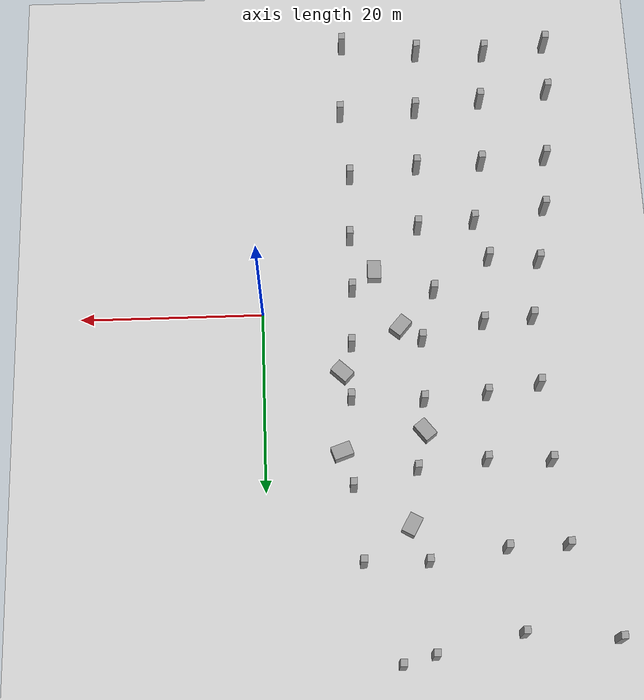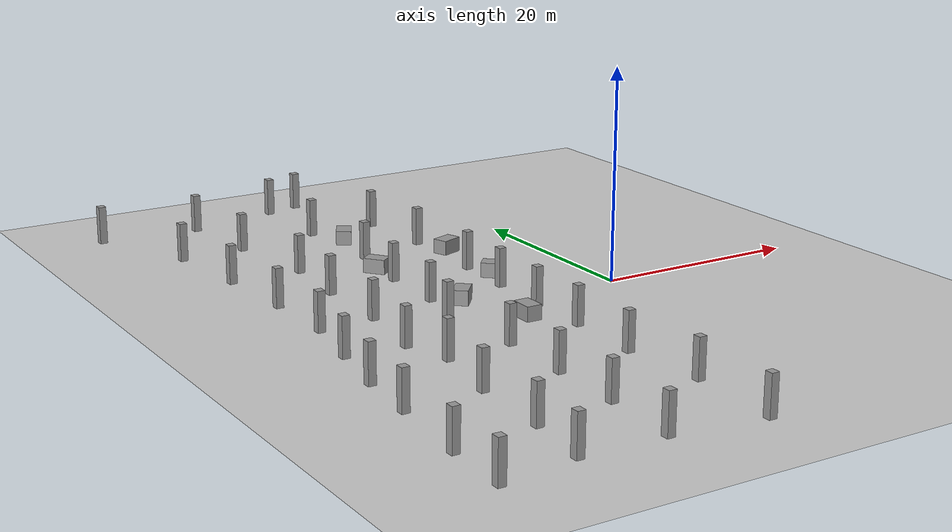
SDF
<sdf version="1.6">
 <world name="default">
  <model name="ground_plane">
   <static>1</static>
   <link name="link">
    <collision name="collision">
     <geometry><plane><normal>0 0 1</normal><size>100 100</size></plane></geometry>
     <surface><friction><ode><mu>100</mu><mu2>50</mu2></ode></friction></surface>
    </collision>
    <visual name="visual">
     <cast_shadows>0</cast_shadows>
     <geometry><plane><normal>0 0 1</normal><size>100 100</size></plane></geometry>
     <material>
      <script><uri>file://media/materials/scripts/gazebo.material</uri><name>Gazebo/Grey</name></script>
     </material>
    </visual>
    <velocity_decay><linear>0</linear><angular>0</angular></velocity_decay>
   </link>
  </model>
  <model name="unit_box_0_clone_33">
   <pose>-10.0764 -15.8876 1.85358 0 -0 0.000475</pose>
   <link name="link">
    <inertial>
     <mass>1</mass>
     <inertia>
      <ixx>0.166667</ixx>
      <ixy>0</ixy>
      <ixz>0</ixz>
      <iyy>0.166667</iyy>
      <iyz>0</iyz>
      <izz>0.166667</izz>
     </inertia>
    </inertial>
    <collision name="collision"><geometry><box><size>0.721478 0.765781 3.70716</size></box></geometry></collision>
    <visual name="visual">
     <geometry><box><size>0.721478 0.765781 3.70716</size></box></geometry>
     <material>
      <script><name>Gazebo/Grey</name><uri>file://media/materials/scripts/gazebo.material</uri></script>
     </material>
    </visual>
   </link>
  </model>
  <model name="unit_box_0_clone_34">
   <pose>-9.80887 -8.41238 1.85358 1e-06 0 0.000303</pose>
   <link name="link">
    <inertial>
     <mass>1</mass>
     <inertia>
      <ixx>0.166667</ixx>
      <ixy>0</ixy>
      <ixz>0</ixz>
      <iyy>0.166667</iyy>
      <iyz>0</iyz>
      <izz>0.166667</izz>
     </inertia>
    </inertial>
    <collision name="collision"><geometry><box><size>0.721478 0.765781 3.70716</size></box></geometry></collision>
    <visual name="visual">
     <geometry><box><size>0.721478 0.765781 3.70716</size></box></geometry>
     <material>
      <script><name>Gazebo/Grey</name><uri>file://media/materials/scripts/gazebo.material</uri></script>
     </material>
    </visual>
   </link>
  </model>
  <model name="unit_box_0_clone_35">
   <pose>-9.84797 -2.25043 1.85358 -1e-06 -0 0.000566</pose>
   <link name="link">
    <inertial>
     <mass>1</mass>
     <inertia>
      <ixx>0.166667</ixx>
      <ixy>0</ixy>
      <ixz>0</ixz>
      <iyy>0.166667</iyy>
      <iyz>0</iyz>
      <izz>0.166667</izz>
     </inertia>
    </inertial>
    <collision name="collision"><geometry><box><size>0.721478 0.765781 3.70716</size></box></geometry></collision>
    <visual name="visual">
     <geometry><box><size>0.721478 0.765781 3.70716</size></box></geometry>
     <material>
      <script><name>Gazebo/Grey</name><uri>file://media/materials/scripts/gazebo.material</uri></script>
     </material>
    </visual>
   </link>
  </model>
  <model name="unit_box_0_clone_36">
   <pose>-9.559 4.11578 1.85358 0 1e-06 0.000651</pose>
   <link name="link">
    <inertial>
     <mass>1</mass>
     <inertia>
      <ixx>0.166667</ixx>
      <ixy>0</ixy>
      <ixz>0</ixz>
      <iyy>0.166667</iyy>
      <iyz>0</iyz>
      <izz>0.166667</izz>
     </inertia>
    </inertial>
    <collision name="collision"><geometry><box><size>0.721478 0.765781 3.70716</size></box></geometry></collision>
    <visual name="visual">
     <geometry><box><size>0.721478 0.765781 3.70716</size></box></geometry>
     <material>
      <script><name>Gazebo/Grey</name><uri>file://media/materials/scripts/gazebo.material</uri></script>
     </material>
    </visual>
   </link>
  </model>
  <model name="unit_box_0_clone_37">
   <pose>-9.31238 10.2072 1.85358 1e-06 0 0.000324</pose>
   <link name="link">
    <inertial>
     <mass>1</mass>
     <inertia>
      <ixx>0.166667</ixx>
      <ixy>0</ixy>
      <ixz>0</ixz>
      <iyy>0.166667</iyy>
      <iyz>0</iyz>
      <izz>0.166667</izz>
     </inertia>
    </inertial>
    <collision name="collision"><geometry><box><size>0.721478 0.765781 3.70716</size></box></geometry></collision>
    <visual name="visual">
     <geometry><box><size>0.721478 0.765781 3.70716</size></box></geometry>
     <material>
      <script><name>Gazebo/Grey</name><uri>file://media/materials/scripts/gazebo.material</uri></script>
     </material>
    </visual>
   </link>
  </model>
  <model name="unit_box_0_clone_38">
   <pose>-9.21908 19.7816 1.85358 -1e-06 -0 0.000661</pose>
   <link name="link">
    <inertial>
     <mass>1</mass>
     <inertia>
      <ixx>0.166667</ixx>
      <ixy>0</ixy>
      <ixz>0</ixz>
      <iyy>0.166667</iyy>
      <iyz>0</iyz>
      <izz>0.166667</izz>
     </inertia>
    </inertial>
    <collision name="collision"><geometry><box><size>0.721478 0.765781 3.70716</size></box></geometry></collision>
    <visual name="visual">
     <geometry><box><size>0.721478 0.765781 3.70716</size></box></geometry>
     <material>
      <script><name>Gazebo/Grey</name><uri>file://media/materials/scripts/gazebo.material</uri></script>
     </material>
    </visual>
   </link>
  </model>
  <model name="unit_box_0_clone_39">
   <pose>-9.97058 27.8436 1.85358 1e-06 -0 0.000582</pose>
   <link name="link">
    <inertial>
     <mass>1</mass>
     <inertia>
      <ixx>0.166667</ixx>
      <ixy>0</ixy>
      <ixz>0</ixz>
      <iyy>0.166667</iyy>
      <iyz>0</iyz>
      <izz>0.166667</izz>
     </inertia>
    </inertial>
    <collision name="collision"><geometry><box><size>0.721478 0.765781 3.70716</size></box></geometry></collision>
    <visual name="visual">
     <geometry><box><size>0.721478 0.765781 3.70716</size></box></geometry>
     <material>
      <script><name>Gazebo/Grey</name><uri>file://media/materials/scripts/gazebo.material</uri></script>
     </material>
    </visual>
   </link>
  </model>
  <model name="unit_box_0_clone_40">
   <pose>-17.4 -9.48121 1.85358 -1e-06 -0 0.000379</pose>
   <link name="link">
    <inertial>
     <mass>1</mass>
     <inertia>
      <ixx>0.166667</ixx>
      <ixy>0</ixy>
      <ixz>0</ixz>
      <iyy>0.166667</iyy>
      <iyz>0</iyz>
      <izz>0.166667</izz>
     </inertia>
    </inertial>
    <collision name="collision"><geometry><box><size>0.721478 0.765781 3.70716</size></box></geometry></collision>
    <visual name="visual">
     <geometry><box><size>0.721478 0.765781 3.70716</size></box></geometry>
     <material>
      <script><name>Gazebo/Grey</name><uri>file://media/materials/scripts/gazebo.material</uri></script>
     </material>
    </visual>
   </link>
  </model>
  <model name="unit_box_0_clone_41">
   <pose>-17.6338 -16.9069 1.85358 0 -0 0.000554</pose>
   <link name="link">
    <inertial>
     <mass>1</mass>
     <inertia>
      <ixx>0.166667</ixx>
      <ixy>0</ixy>
      <ixz>0</ixz>
      <iyy>0.166667</iyy>
      <iyz>0</iyz>
      <izz>0.166667</izz>
     </inertia>
    </inertial>
    <collision name="collision"><geometry><box><size>0.721478 0.765781 3.70716</size></box></geometry></collision>
    <visual name="visual">
     <geometry><box><size>0.721478 0.765781 3.70716</size></box></geometry>
     <material>
      <script><name>Gazebo/Grey</name><uri>file://media/materials/scripts/gazebo.material</uri></script>
     </material>
    </visual>
   </link>
  </model>
  <model name="unit_box_0_clone_42">
   <pose>-18.7564 -1.80751 1.85358 -0 -1e-06 0.000684</pose>
   <link name="link">
    <inertial>
     <mass>1</mass>
     <inertia>
      <ixx>0.166667</ixx>
      <ixy>0</ixy>
      <ixz>0</ixz>
      <iyy>0.166667</iyy>
      <iyz>0</iyz>
      <izz>0.166667</izz>
     </inertia>
    </inertial>
    <collision name="collision"><geometry><box><size>0.721478 0.765781 3.70716</size></box></geometry></collision>
    <visual name="visual">
     <geometry><box><size>0.721478 0.765781 3.70716</size></box></geometry>
     <material>
      <script><name>Gazebo/Grey</name><uri>file://media/materials/scripts/gazebo.material</uri></script>
     </material>
    </visual>
   </link>
  </model>
  <model name="unit_box_0_clone_43">
   <pose>-17.2028 3.77187 1.85358 -0 -1e-06 0.000669</pose>
   <link name="link">
    <inertial>
     <mass>1</mass>
     <inertia>
      <ixx>0.166667</ixx>
      <ixy>0</ixy>
      <ixz>0</ixz>
      <iyy>0.166667</iyy>
      <iyz>0</iyz>
      <izz>0.166667</izz>
     </inertia>
    </inertial>
    <collision name="collision"><geometry><box><size>0.721478 0.765781 3.70716</size></box></geometry></collision>
    <visual name="visual">
     <geometry><box><size>0.721478 0.765781 3.70716</size></box></geometry>
     <material>
      <script><name>Gazebo/Grey</name><uri>file://media/materials/scripts/gazebo.material</uri></script>
     </material>
    </visual>
   </link>
  </model>
  <model name="unit_box_0_clone_44">
   <pose>-17.0616 10.6374 1.85358 0 -0 0.000725</pose>
   <link name="link">
    <inertial>
     <mass>1</mass>
     <inertia>
      <ixx>0.166667</ixx>
      <ixy>0</ixy>
      <ixz>0</ixz>
      <iyy>0.166667</iyy>
      <iyz>0</iyz>
      <izz>0.166667</izz>
     </inertia>
    </inertial>
    <collision name="collision"><geometry><box><size>0.721478 0.765781 3.70716</size></box></geometry></collision>
    <visual name="visual">
     <geometry><box><size>0.721478 0.765781 3.70716</size></box></geometry>
     <material>
      <script><name>Gazebo/Grey</name><uri>file://media/materials/scripts/gazebo.material</uri></script>
     </material>
    </visual>
   </link>
  </model>
  <model name="unit_box_0_clone_45">
   <pose>-16.0137 18.1359 1.85358 -1e-06 -0 0.000697</pose>
   <link name="link">
    <inertial>
     <mass>1</mass>
     <inertia>
      <ixx>0.166667</ixx>
      <ixy>0</ixy>
      <ixz>0</ixz>
      <iyy>0.166667</iyy>
      <iyz>0</iyz>
      <izz>0.166667</izz>
     </inertia>
    </inertial>
    <collision name="collision"><geometry><box><size>0.721478 0.765781 3.70716</size></box></geometry></collision>
    <visual name="visual">
     <geometry><box><size>0.721478 0.765781 3.70716</size></box></geometry>
     <material>
      <script><name>Gazebo/Grey</name><uri>file://media/materials/scripts/gazebo.material</uri></script>
     </material>
    </visual>
   </link>
  </model>
  <model name="unit_box_0_clone_46">
   <pose>-16.7202 27.9817 1.85358 -1e-06 -0 0.000438</pose>
   <link name="link">
    <inertial>
     <mass>1</mass>
     <inertia>
      <ixx>0.166667</ixx>
      <ixy>0</ixy>
      <ixz>0</ixz>
      <iyy>0.166667</iyy>
      <iyz>0</iyz>
      <izz>0.166667</izz>
     </inertia>
    </inertial>
    <collision name="collision"><geometry><box><size>0.721478 0.765781 3.70716</size></box></geometry></collision>
    <visual name="visual">
     <geometry><box><size>0.721478 0.765781 3.70716</size></box></geometry>
     <material>
      <script><name>Gazebo/Grey</name><uri>file://media/materials/scripts/gazebo.material</uri></script>
     </material>
    </visual>
   </link>
  </model>
  <model name="unit_box_0_clone_47">
   <pose>-24.8994 26.7733 1.85358 0 -1e-06 0.000408</pose>
   <link name="link">
    <inertial>
     <mass>1</mass>
     <inertia>
      <ixx>0.166667</ixx>
      <ixy>0</ixy>
      <ixz>0</ixz>
      <iyy>0.166667</iyy>
      <iyz>0</iyz>
      <izz>0.166667</izz>
     </inertia>
    </inertial>
    <collision name="collision"><geometry><box><size>0.721478 0.765781 3.70716</size></box></geometry></collision>
    <visual name="visual">
     <geometry><box><size>0.721478 0.765781 3.70716</size></box></geometry>
     <material>
      <script><name>Gazebo/Grey</name><uri>file://media/materials/scripts/gazebo.material</uri></script>
     </material>
    </visual>
   </link>
  </model>
  <model name="unit_box_0_clone_48">
   <pose>-23.3545 17.3987 1.85358 0 -1e-06 0.000656</pose>
   <link name="link">
    <inertial>
     <mass>1</mass>
     <inertia>
      <ixx>0.166667</ixx>
      <ixy>0</ixy>
      <ixz>0</ixz>
      <iyy>0.166667</iyy>
      <iyz>0</iyz>
      <izz>0.166667</izz>
     </inertia>
    </inertial>
    <collision name="collision"><geometry><box><size>0.721478 0.765781 3.70716</size></box></geometry></collision>
    <visual name="visual">
     <geometry><box><size>0.721478 0.765781 3.70716</size></box></geometry>
     <material>
      <script><name>Gazebo/Grey</name><uri>file://media/materials/scripts/gazebo.material</uri></script>
     </material>
    </visual>
   </link>
  </model>
  <model name="unit_box_0_clone_49">
   <pose>-23.8608 10.1213 1.85358 0 -1e-06 0.000806</pose>
   <link name="link">
    <inertial>
     <mass>1</mass>
     <inertia>
      <ixx>0.166667</ixx>
      <ixy>0</ixy>
      <ixz>0</ixz>
      <iyy>0.166667</iyy>
      <iyz>0</iyz>
      <izz>0.166667</izz>
     </inertia>
    </inertial>
    <collision name="collision"><geometry><box><size>0.721478 0.765781 3.70716</size></box></geometry></collision>
    <visual name="visual">
     <geometry><box><size>0.721478 0.765781 3.70716</size></box></geometry>
     <material>
      <script><name>Gazebo/Grey</name><uri>file://media/materials/scripts/gazebo.material</uri></script>
     </material>
    </visual>
   </link>
  </model>
  <model name="unit_box_0_clone_50">
   <pose>-23.9772 1.98235 1.85358 -0 1e-06 0.000303</pose>
   <link name="link">
    <inertial>
     <mass>1</mass>
     <inertia>
      <ixx>0.166667</ixx>
      <ixy>0</ixy>
      <ixz>0</ixz>
      <iyy>0.166667</iyy>
      <iyz>0</iyz>
      <izz>0.166667</izz>
     </inertia>
    </inertial>
    <collision name="collision"><geometry><box><size>0.721478 0.765781 3.70716</size></box></geometry></collision>
    <visual name="visual">
     <geometry><box><size>0.721478 0.765781 3.70716</size></box></geometry>
     <material>
      <script><name>Gazebo/Grey</name><uri>file://media/materials/scripts/gazebo.material</uri></script>
     </material>
    </visual>
   </link>
  </model>
  <model name="unit_box_0_clone_51">
   <pose>-25.018 -5.48743 1.85358 0 -0 0.000438</pose>
   <link name="link">
    <inertial>
     <mass>1</mass>
     <inertia>
      <ixx>0.166667</ixx>
      <ixy>0</ixy>
      <ixz>0</ixz>
      <iyy>0.166667</iyy>
      <iyz>0</iyz>
      <izz>0.166667</izz>
     </inertia>
    </inertial>
    <collision name="collision"><geometry><box><size>0.721478 0.765781 3.70716</size></box></geometry></collision>
    <visual name="visual">
     <geometry><box><size>0.721478 0.765781 3.70716</size></box></geometry>
     <material>
      <script><name>Gazebo/Grey</name><uri>file://media/materials/scripts/gazebo.material</uri></script>
     </material>
    </visual>
   </link>
  </model>
  <model name="unit_box_0_clone_52">
   <pose>-23.6786 -9.95656 1.85358 -0 -1e-06 0.000425</pose>
   <link name="link">
    <inertial>
     <mass>1</mass>
     <inertia>
      <ixx>0.166667</ixx>
      <ixy>0</ixy>
      <ixz>0</ixz>
      <iyy>0.166667</iyy>
      <iyz>0</iyz>
      <izz>0.166667</izz>
     </inertia>
    </inertial>
    <collision name="collision"><geometry><box><size>0.721478 0.765781 3.70716</size></box></geometry></collision>
    <visual name="visual">
     <geometry><box><size>0.721478 0.765781 3.70716</size></box></geometry>
     <material>
      <script><name>Gazebo/Grey</name><uri>file://media/materials/scripts/gazebo.material</uri></script>
     </material>
    </visual>
   </link>
  </model>
  <model name="unit_box_0_clone_53">
   <pose>-24.932 -17.1426 1.85358 0 -1e-06 0.000767</pose>
   <link name="link">
    <inertial>
     <mass>1</mass>
     <inertia>
      <ixx>0.166667</ixx>
      <ixy>0</ixy>
      <ixz>0</ixz>
      <iyy>0.166667</iyy>
      <iyz>0</iyz>
      <izz>0.166667</izz>
     </inertia>
    </inertial>
    <collision name="collision"><geometry><box><size>0.721478 0.765781 3.70716</size></box></geometry></collision>
    <visual name="visual">
     <geometry><box><size>0.721478 0.765781 3.70716</size></box></geometry>
     <material>
      <script><name>Gazebo/Grey</name><uri>file://media/materials/scripts/gazebo.material</uri></script>
     </material>
    </visual>
   </link>
  </model>
  <model name="unit_box_0_clone_67">
   <pose>-9.25375 -23.8453 1.85358 -1e-06 -0 0.000568</pose>
   <link name="link">
    <inertial>
     <mass>1</mass>
     <inertia>
      <ixx>0.166667</ixx>
      <ixy>0</ixy>
      <ixz>0</ixz>
      <iyy>0.166667</iyy>
      <iyz>0</iyz>
      <izz>0.166667</izz>
     </inertia>
    </inertial>
    <collision name="collision"><geometry><box><size>0.721478 0.765781 3.70716</size></box></geometry></collision>
    <visual name="visual">
     <geometry><box><size>0.721478 0.765781 3.70716</size></box></geometry>
     <material>
      <script><name>Gazebo/Grey</name><uri>file://media/materials/scripts/gazebo.material</uri></script>
     </material>
    </visual>
   </link>
  </model>
  <model name="unit_box_0_clone_68">
   <pose>-17.82 -24.0851 1.85358 -0 -1e-06 0.000392</pose>
   <link name="link">
    <inertial>
     <mass>1</mass>
     <inertia>
      <ixx>0.166667</ixx>
      <ixy>0</ixy>
      <ixz>0</ixz>
      <iyy>0.166667</iyy>
      <iyz>0</iyz>
      <izz>0.166667</izz>
     </inertia>
    </inertial>
    <collision name="collision"><geometry><box><size>0.721478 0.765781 3.70716</size></box></geometry></collision>
    <visual name="visual">
     <geometry><box><size>0.721478 0.765781 3.70716</size></box></geometry>
     <material>
      <script><name>Gazebo/Grey</name><uri>file://media/materials/scripts/gazebo.material</uri></script>
     </material>
    </visual>
   </link>
  </model>
  <model name="unit_box_0_clone_69">
   <pose>-25.2602 -25.0483 1.85358 0 -0 0.000571</pose>
   <link name="link">
    <inertial>
     <mass>1</mass>
     <inertia>
      <ixx>0.166667</ixx>
      <ixy>0</ixy>
      <ixz>0</ixz>
      <iyy>0.166667</iyy>
      <iyz>0</iyz>
      <izz>0.166667</izz>
     </inertia>
    </inertial>
    <collision name="collision"><geometry><box><size>0.721478 0.765781 3.70716</size></box></geometry></collision>
    <visual name="visual">
     <geometry><box><size>0.721478 0.765781 3.70716</size></box></geometry>
     <material>
      <script><name>Gazebo/Grey</name><uri>file://media/materials/scripts/gazebo.material</uri></script>
     </material>
    </visual>
   </link>
  </model>
  <model name="unit_box_0_clone_70">
   <pose>-31.2029 26.6281 1.85358 0 -0 0.000497</pose>
   <link name="link">
    <inertial>
     <mass>1</mass>
     <inertia>
      <ixx>0.166667</ixx>
      <ixy>0</ixy>
      <ixz>0</ixz>
      <iyy>0.166667</iyy>
      <iyz>0</iyz>
      <izz>0.166667</izz>
     </inertia>
    </inertial>
    <collision name="collision"><geometry><box><size>0.721478 0.765781 3.70716</size></box></geometry></collision>
    <visual name="visual">
     <geometry><box><size>0.721478 0.765781 3.70716</size></box></geometry>
     <material>
      <script><name>Gazebo/Grey</name><uri>file://media/materials/scripts/gazebo.material</uri></script>
     </material>
    </visual>
   </link>
  </model>
  <model name="unit_box_0_clone_71">
   <pose>-30.1652 17.6433 1.85358 1e-06 -0 0.000456</pose>
   <link name="link">
    <inertial>
     <mass>1</mass>
     <inertia>
      <ixx>0.166667</ixx>
      <ixy>0</ixy>
      <ixz>0</ixz>
      <iyy>0.166667</iyy>
      <iyz>0</iyz>
      <izz>0.166667</izz>
     </inertia>
    </inertial>
    <collision name="collision"><geometry><box><size>0.721478 0.765781 3.70716</size></box></geometry></collision>
    <visual name="visual">
     <geometry><box><size>0.721478 0.765781 3.70716</size></box></geometry>
     <material>
      <script><name>Gazebo/Grey</name><uri>file://media/materials/scripts/gazebo.material</uri></script>
     </material>
    </visual>
   </link>
  </model>
  <model name="unit_box_0_clone_72">
   <pose>-29.5426 9.20142 1.85358 0 1e-06 0.000667</pose>
   <link name="link">
    <inertial>
     <mass>1</mass>
     <inertia>
      <ixx>0.166667</ixx>
      <ixy>0</ixy>
      <ixz>0</ixz>
      <iyy>0.166667</iyy>
      <iyz>0</iyz>
      <izz>0.166667</izz>
     </inertia>
    </inertial>
    <collision name="collision"><geometry><box><size>0.721478 0.765781 3.70716</size></box></geometry></collision>
    <visual name="visual">
     <geometry><box><size>0.721478 0.765781 3.70716</size></box></geometry>
     <material>
      <script><name>Gazebo/Grey</name><uri>file://media/materials/scripts/gazebo.material</uri></script>
     </material>
    </visual>
   </link>
  </model>
  <model name="unit_box_0_clone_73">
   <pose>-29.3583 1.56886 1.85358 -1e-06 0 0.000624</pose>
   <link name="link">
    <inertial>
     <mass>1</mass>
     <inertia>
      <ixx>0.166667</ixx>
      <ixy>0</ixy>
      <ixz>0</ixz>
      <iyy>0.166667</iyy>
      <iyz>0</iyz>
      <izz>0.166667</izz>
     </inertia>
    </inertial>
    <collision name="collision"><geometry><box><size>0.721478 0.765781 3.70716</size></box></geometry></collision>
    <visual name="visual">
     <geometry><box><size>0.721478 0.765781 3.70716</size></box></geometry>
     <material>
      <script><name>Gazebo/Grey</name><uri>file://media/materials/scripts/gazebo.material</uri></script>
     </material>
    </visual>
   </link>
  </model>
  <model name="unit_box_0_clone_74">
   <pose>-30.5376 -5.05054 1.85358 -1e-06 -0 0.000514</pose>
   <link name="link">
    <inertial>
     <mass>1</mass>
     <inertia>
      <ixx>0.166667</ixx>
      <ixy>0</ixy>
      <ixz>0</ixz>
      <iyy>0.166667</iyy>
      <iyz>0</iyz>
      <izz>0.166667</izz>
     </inertia>
    </inertial>
    <collision name="collision"><geometry><box><size>0.721478 0.765781 3.70716</size></box></geometry></collision>
    <visual name="visual">
     <geometry><box><size>0.721478 0.765781 3.70716</size></box></geometry>
     <material>
      <script><name>Gazebo/Grey</name><uri>file://media/materials/scripts/gazebo.material</uri></script>
     </material>
    </visual>
   </link>
  </model>
  <model name="unit_box_0_clone_75">
   <pose>-31.652 -11.4155 1.85358 0 1e-06 0.000474</pose>
   <link name="link">
    <inertial>
     <mass>1</mass>
     <inertia>
      <ixx>0.166667</ixx>
      <ixy>0</ixy>
      <ixz>0</ixz>
      <iyy>0.166667</iyy>
      <iyz>0</iyz>
      <izz>0.166667</izz>
     </inertia>
    </inertial>
    <collision name="collision"><geometry><box><size>0.721478 0.765781 3.70716</size></box></geometry></collision>
    <visual name="visual">
     <geometry><box><size>0.721478 0.765781 3.70716</size></box></geometry>
     <material>
      <script><name>Gazebo/Grey</name><uri>file://media/materials/scripts/gazebo.material</uri></script>
     </material>
    </visual>
   </link>
  </model>
  <model name="unit_box_0_clone_76">
   <pose>-32.2267 -17.6233 1.85358 0 -0 0.000739</pose>
   <link name="link">
    <inertial>
     <mass>1</mass>
     <inertia>
      <ixx>0.166667</ixx>
      <ixy>0</ixy>
      <ixz>0</ixz>
      <iyy>0.166667</iyy>
      <iyz>0</iyz>
      <izz>0.166667</izz>
     </inertia>
    </inertial>
    <collision name="collision"><geometry><box><size>0.721478 0.765781 3.70716</size></box></geometry></collision>
    <visual name="visual">
     <geometry><box><size>0.721478 0.765781 3.70716</size></box></geometry>
     <material>
      <script><name>Gazebo/Grey</name><uri>file://media/materials/scripts/gazebo.material</uri></script>
     </material>
    </visual>
   </link>
  </model>
  <model name="unit_box_0_clone_77">
   <pose>-33.0004 -25.9995 1.85358 0 -1e-06 0.000717</pose>
   <link name="link">
    <inertial>
     <mass>1</mass>
     <inertia>
      <ixx>0.166667</ixx>
      <ixy>0</ixy>
      <ixz>0</ixz>
      <iyy>0.166667</iyy>
      <iyz>0</iyz>
      <izz>0.166667</izz>
     </inertia>
    </inertial>
    <collision name="collision"><geometry><box><size>0.721478 0.765781 3.70716</size></box></geometry></collision>
    <visual name="visual">
     <geometry><box><size>0.721478 0.765781 3.70716</size></box></geometry>
     <material>
      <script><name>Gazebo/Grey</name><uri>file://media/materials/scripts/gazebo.material</uri></script>
     </material>
    </visual>
   </link>
  </model>
  <model name="unit_box_0_clone_84">
   <pose>-9.71976 -32.6643 1.85358 0 -0 0.000619</pose>
   <link name="link">
    <inertial>
     <mass>1</mass>
     <inertia>
      <ixx>0.166667</ixx>
      <ixy>0</ixy>
      <ixz>0</ixz>
      <iyy>0.166667</iyy>
      <iyz>0</iyz>
      <izz>0.166667</izz>
     </inertia>
    </inertial>
    <collision name="collision"><geometry><box><size>0.721478 0.765781 3.70716</size></box></geometry></collision>
    <visual name="visual">
     <geometry><box><size>0.721478 0.765781 3.70716</size></box></geometry>
     <material>
      <script><name>Gazebo/Grey</name><uri>file://media/materials/scripts/gazebo.material</uri></script>
     </material>
    </visual>
   </link>
  </model>
  <model name="unit_box_0_clone_85">
   <pose>-18.2903 -31.491 1.85358 -0 -1e-06 0.000516</pose>
   <link name="link">
    <inertial>
     <mass>1</mass>
     <inertia>
      <ixx>0.166667</ixx>
      <ixy>0</ixy>
      <ixz>0</ixz>
      <iyy>0.166667</iyy>
      <iyz>0</iyz>
      <izz>0.166667</izz>
     </inertia>
    </inertial>
    <collision name="collision"><geometry><box><size>0.721478 0.765781 3.70716</size></box></geometry></collision>
    <visual name="visual">
     <geometry><box><size>0.721478 0.765781 3.70716</size></box></geometry>
     <material>
      <script><name>Gazebo/Grey</name><uri>file://media/materials/scripts/gazebo.material</uri></script>
     </material>
    </visual>
   </link>
  </model>
  <model name="unit_box_0_clone_86">
   <pose>-26.0827 -31.2584 1.85358 0 -0 0.000434</pose>
   <link name="link">
    <inertial>
     <mass>1</mass>
     <inertia>
      <ixx>0.166667</ixx>
      <ixy>0</ixy>
      <ixz>0</ixz>
      <iyy>0.166667</iyy>
      <iyz>0</iyz>
      <izz>0.166667</izz>
     </inertia>
    </inertial>
    <collision name="collision"><geometry><box><size>0.721478 0.765781 3.70716</size></box></geometry></collision>
    <visual name="visual">
     <geometry><box><size>0.721478 0.765781 3.70716</size></box></geometry>
     <material>
      <script><name>Gazebo/Grey</name><uri>file://media/materials/scripts/gazebo.material</uri></script>
     </material>
    </visual>
   </link>
  </model>
  <model name="unit_box_0_clone_87">
   <pose>-33.1927 -32.2003 1.85358 0 -1e-06 0.000478</pose>
   <link name="link">
    <inertial>
     <mass>1</mass>
     <inertia>
      <ixx>0.166667</ixx>
      <ixy>0</ixy>
      <ixz>0</ixz>
      <iyy>0.166667</iyy>
      <iyz>0</iyz>
      <izz>0.166667</izz>
     </inertia>
    </inertial>
    <collision name="collision"><geometry><box><size>0.721478 0.765781 3.70716</size></box></geometry></collision>
    <visual name="visual">
     <geometry><box><size>0.721478 0.765781 3.70716</size></box></geometry>
     <material>
      <script><name>Gazebo/Grey</name><uri>file://media/materials/scripts/gazebo.material</uri></script>
     </material>
    </visual>
   </link>
  </model>
  <model name="unit_box_0_clone_94">
   <pose>-16.8923 37.4582 1.85358 1e-06 -0 0.000511</pose>
   <link name="link">
    <inertial>
     <mass>1</mass>
     <inertia>
      <ixx>0.166667</ixx>
      <ixy>0</ixy>
      <ixz>0</ixz>
      <iyy>0.166667</iyy>
      <iyz>0</iyz>
      <izz>0.166667</izz>
     </inertia>
    </inertial>
    <collision name="collision"><geometry><box><size>0.721478 0.765781 3.70716</size></box></geometry></collision>
    <visual name="visual">
     <geometry><box><size>0.721478 0.765781 3.70716</size></box></geometry>
     <material>
      <script><name>Gazebo/Grey</name><uri>file://media/materials/scripts/gazebo.material</uri></script>
     </material>
    </visual>
   </link>
  </model>
  <model name="unit_box_0_clone_95">
   <pose>-26.0003 35.4904 1.85358 -1e-06 -0 0.000661</pose>
   <link name="link">
    <inertial>
     <mass>1</mass>
     <inertia>
      <ixx>0.166667</ixx>
      <ixy>0</ixy>
      <ixz>0</ixz>
      <iyy>0.166667</iyy>
      <iyz>0</iyz>
      <izz>0.166667</izz>
     </inertia>
    </inertial>
    <collision name="collision"><geometry><box><size>0.721478 0.765781 3.70716</size></box></geometry></collision>
    <visual name="visual">
     <geometry><box><size>0.721478 0.765781 3.70716</size></box></geometry>
     <material>
      <script><name>Gazebo/Grey</name><uri>file://media/materials/scripts/gazebo.material</uri></script>
     </material>
    </visual>
   </link>
  </model>
  <model name="unit_box_0_clone_96">
   <pose>-35.6789 36.2988 1.85358 -1e-06 -0 0.000679</pose>
   <link name="link">
    <inertial>
     <mass>1</mass>
     <inertia>
      <ixx>0.166667</ixx>
      <ixy>0</ixy>
      <ixz>0</ixz>
      <iyy>0.166667</iyy>
      <iyz>0</iyz>
      <izz>0.166667</izz>
     </inertia>
    </inertial>
    <collision name="collision"><geometry><box><size>0.721478 0.765781 3.70716</size></box></geometry></collision>
    <visual name="visual">
     <geometry><box><size>0.721478 0.765781 3.70716</size></box></geometry>
     <material>
      <script><name>Gazebo/Grey</name><uri>file://media/materials/scripts/gazebo.material</uri></script>
     </material>
    </visual>
   </link>
  </model>
  <model name="unit_box_0_clone_97">
   <pose>-13.5143 38.3433 1.85358 0 1e-06 0.000622</pose>
   <link name="link">
    <inertial>
     <mass>1</mass>
     <inertia>
      <ixx>0.166667</ixx>
      <ixy>0</ixy>
      <ixz>0</ixz>
      <iyy>0.166667</iyy>
      <iyz>0</iyz>
      <izz>0.166667</izz>
     </inertia>
    </inertial>
    <collision name="collision"><geometry><box><size>0.721478 0.765781 3.70716</size></box></geometry></collision>
    <visual name="visual">
     <geometry><box><size>0.721478 0.765781 3.70716</size></box></geometry>
     <material>
      <script><name>Gazebo/Grey</name><uri>file://media/materials/scripts/gazebo.material</uri></script>
     </material>
    </visual>
   </link>
  </model>
  <model name="unit_box_1">
   <pose>-8.46917 7.06427 0.701093 -4e-06 -0 0.819088</pose>
   <link name="link">
    <inertial>
     <mass>1</mass>
     <inertia>
      <ixx>0.166667</ixx>
      <ixy>0</ixy>
      <ixz>0</ixz>
      <iyy>0.166667</iyy>
      <iyz>0</iyz>
      <izz>0.166667</izz>
     </inertia>
    </inertial>
    <collision name="collision"><geometry><box><size>1.47892 2.13104 1.4022</size></box></geometry></collision>
    <visual name="visual">
     <geometry><box><size>1.47892 2.13104 1.4022</size></box></geometry>
     <material>
      <script><name>Gazebo/Grey</name><uri>file://media/materials/scripts/gazebo.material</uri></script>
     </material>
    </visual>
   </link>
  </model>
  <model name="unit_box_1_clone_6">
   <pose>-8.16554 15.8977 0.701095 5e-06 -0 1.90955</pose>
   <link name="link">
    <inertial>
     <mass>1</mass>
     <inertia>
      <ixx>0.166667</ixx>
      <ixy>0</ixy>
      <ixz>0</ixz>
      <iyy>0.166667</iyy>
      <iyz>0</iyz>
      <izz>0.166667</izz>
     </inertia>
    </inertial>
    <collision name="collision"><geometry><box><size>1.47892 2.13104 1.4022</size></box></geometry></collision>
    <visual name="visual">
     <geometry><box><size>1.47892 2.13104 1.4022</size></box></geometry>
     <material>
      <script><name>Gazebo/Grey</name><uri>file://media/materials/scripts/gazebo.material</uri></script>
     </material>
    </visual>
   </link>
  </model>
  <model name="unit_box_1_clone_8">
   <pose>-12.3872 -4.56384 0.7011 0 -0 1.9e-05</pose>
   <link name="link">
    <inertial>
     <mass>1</mass>
     <inertia>
      <ixx>0.166667</ixx>
      <ixy>0</ixy>
      <ixz>0</ixz>
      <iyy>0.166667</iyy>
      <iyz>0</iyz>
      <izz>0.166667</izz>
     </inertia>
    </inertial>
    <collision name="collision"><geometry><box><size>1.47892 2.13104 1.4022</size></box></geometry></collision>
    <visual name="visual">
     <geometry><box><size>1.47892 2.13104 1.4022</size></box></geometry>
     <material>
      <script><name>Gazebo/Grey</name><uri>file://media/materials/scripts/gazebo.material</uri></script>
     </material>
    </visual>
   </link>
  </model>
  <model name="unit_box_1_clone_20">
   <pose>-17.0807 13.832 0.701095 -4e-06 -0 0.662703</pose>
   <link name="link">
    <inertial>
     <mass>1</mass>
     <inertia>
      <ixx>0.166667</ixx>
      <ixy>0</ixy>
      <ixz>0</ixz>
      <iyy>0.166667</iyy>
      <iyz>0</iyz>
      <izz>0.166667</izz>
     </inertia>
    </inertial>
    <collision name="collision"><geometry><box><size>1.47892 2.13104 1.4022</size></box></geometry></collision>
    <visual name="visual">
     <geometry><box><size>1.47892 2.13104 1.4022</size></box></geometry>
     <material>
      <script><name>Gazebo/Grey</name><uri>file://media/materials/scripts/gazebo.material</uri></script>
     </material>
    </visual>
   </link>
  </model>
  <model name="unit_box_1_clone_21">
   <pose>-15.1978 23.9877 0.701095 4e-06 -0 -0.506573</pose>
   <link name="link">
    <inertial>
     <mass>1</mass>
     <inertia>
      <ixx>0.166667</ixx>
      <ixy>0</ixy>
      <ixz>0</ixz>
      <iyy>0.166667</iyy>
      <iyz>0</iyz>
      <izz>0.166667</izz>
     </inertia>
    </inertial>
    <collision name="collision"><geometry><box><size>1.47892 2.13104 1.4022</size></box></geometry></collision>
    <visual name="visual">
     <geometry><box><size>1.47892 2.13104 1.4022</size></box></geometry>
     <material>
      <script><name>Gazebo/Grey</name><uri>file://media/materials/scripts/gazebo.material</uri></script>
     </material>
    </visual>
   </link>
  </model>
  <model name="unit_box_1_clone_22">
   <pose>-15.0006 2.00144 0.701095 -4e-06 -0 -0.71001</pose>
   <link name="link">
    <inertial>
     <mass>1</mass>
     <inertia>
      <ixx>0.166667</ixx>
      <ixy>0</ixy>
      <ixz>0</ixz>
      <iyy>0.166667</iyy>
      <iyz>0</iyz>
      <izz>0.166667</izz>
     </inertia>
    </inertial>
    <collision name="collision"><geometry><box><size>1.47892 2.13104 1.4022</size></box></geometry></collision>
    <visual name="visual">
     <geometry><box><size>1.47892 2.13104 1.4022</size></box></geometry>
     <material>
      <script><name>Gazebo/Grey</name><uri>file://media/materials/scripts/gazebo.material</uri></script>
     </material>
    </visual>
   </link>
  </model>
 </world>
</sdf>
